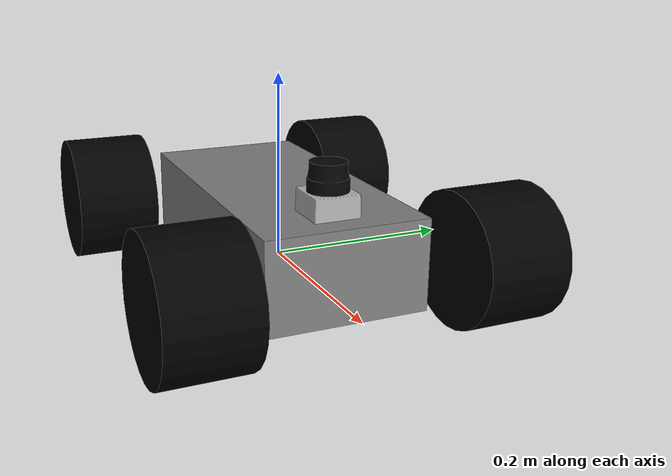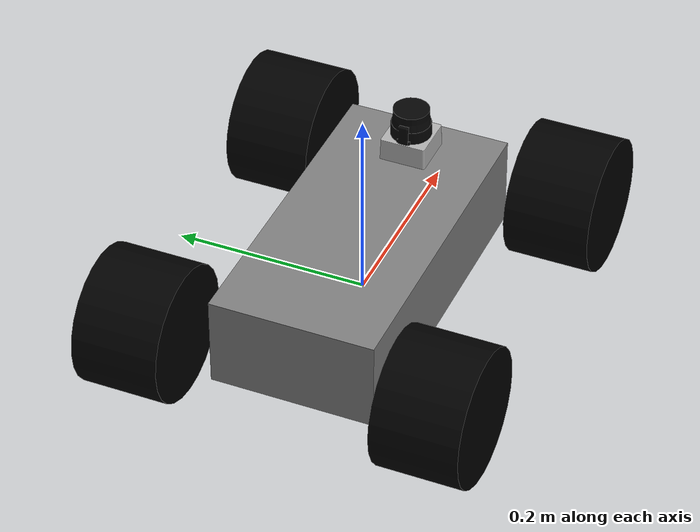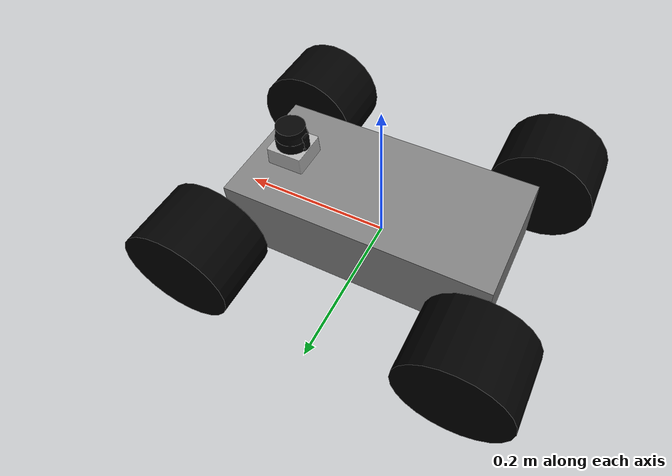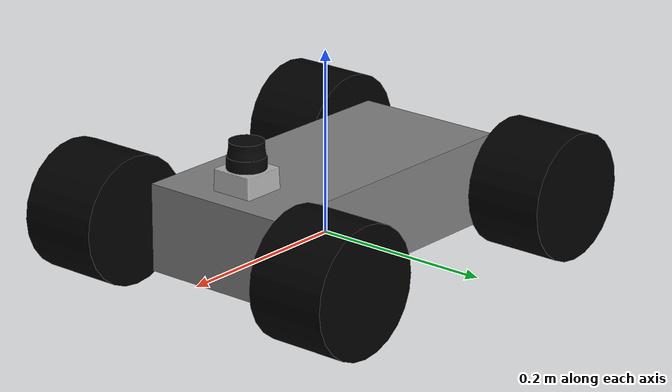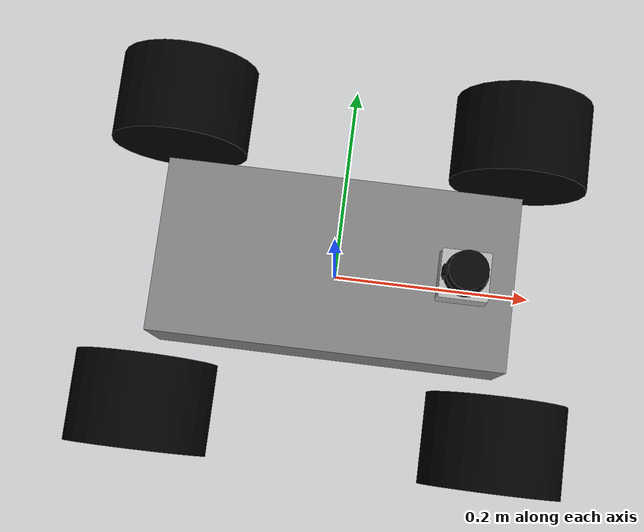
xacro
<?xml version="1.0"?>
<!-- Description of the tas_car. -->

<robot name="tas_car" xmlns:xacro="http://www.ros.org/wiki/xacro"
    xmlns:controller="http://playerstage.sourceforge.net/gazebo/xmlschema/#controller"
    xmlns:interface="http://playerstage.sourceforge.net/gazebo/xmlschema/#interface">
    <!-- Physical constants. -->
    <xacro:property name="degrees_45" value="0.785398163" />
    <xacro:property name="degrees_90" value="1.57079633" />
    <xacro:property name="PI"         value="3.1415926535897931" />

    <!-- Chassis. -->
    <xacro:property name="chassis_length" value="0.346" />
    <xacro:property name="chassis_width"  value="0.17" />
    <xacro:property name="chassis_height" value="0.095" />
    <xacro:property name="chassis_mass"   value="3" />

    <xacro:property name="hub_diameter" value="0.09652"/>
    <xacro:property name="tire_radius" value="0.0695" />
    <xacro:property name="tire_diameter" value="${2*tire_radius}"/>
    <xacro:property name="tire_width" value="0.0889"/>
    <xacro:property name="hex_hub_depth" value="0.01445"/>
    <xacro:property name="wheel_mass" value="0.3"/>
    <xacro:property name="wheel_pos" value="0.179"/>

    <xacro:property name="wheelbase" value="${chassis_length}"/>
    <xacro:property name="hex_hub_dist" value="0.365"/>
    <xacro:property name="axle_length" value="0.03"/>
    <xacro:property name="wheel_travel" value="0.084"/>
    <xacro:property name="shock_z_offset" value="0.0055"/>

    <!-- TODO get shock sprint constant, default used here -->
    <xacro:property name="shock_eff_limit" value="12.5106"/>
    <xacro:property name="shock_vel_limit" value="1000"/>

    <!-- TODO get correct motor specifications -->
    <xacro:property name="axle_eff_limit" value="5.12766"/>
    <xacro:property name="axle_vel_limit" value="244.8696"/>

    <!-- TODO get correct servo specifications -->
    <!-- These constants are used to simulate a Traxxas 2056 servo operated at
       6 V. servo_stall_torque is measured in N m. servo_no_load_speed is
       measured in rad/s. -->
    <xacro:property name="servo_stall_torque" value="0.5649"/>
    <xacro:property name="servo_no_load_speed" value="4.553"/>

    <!-- Laser. -->
    <xacro:property name="laser_size" value="0.05"/>
    <xacro:property name="laser_mass" value="0.1"/>

    <!-- Include files. -->
    <xacro:include filename="$(find tas_car_description)/urdf/include/materials.xacro" />
    <xacro:include filename="$(find tas_car_description)/urdf/include/macros.xacro" />
    <xacro:include filename="$(find tas_car_description)/urdf/include/gazebo_params.gazebo" />

<!-- Build the robot. -->
    <!-- Base link. -->
    <xacro:base_link />

    <!-- Chassis. -->
    <xacro:chassis />

    <!-- Wheels -->
    <xacro:front_wheel  lr_prefix="left"
                        fr_prefix="front"
                        lr_reflect="1"
                        fr_reflect="1"
    />

    <xacro:front_wheel  lr_prefix="right"
                        fr_prefix="front"
                        lr_reflect="-1"
                        fr_reflect="1"
    />

    <xacro:rear_wheel   lr_prefix="left"
                        fr_prefix="rear"
                        lr_reflect="1"
                        fr_reflect="-1"
    />

    <xacro:rear_wheel   lr_prefix="right"
                        fr_prefix="rear"
                        lr_reflect="-1"
                        fr_reflect="-1"
    />

    <!-- Laser scanner. -->
    <xacro:hokuyo_laser />

    <!-- imu -->
    <xacro:imu_link/>

    <gazebo>
        <plugin name="gazebo_ros_control" filename="libgazebo_ros_control.so"/>
    </gazebo>

    <gazebo reference="chassis">
      <material>Gazebo/Orange</material>
    </gazebo>
</robot>

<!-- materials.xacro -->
<robot>
    <material name="black">
       <color rgba="0.0 0.0 0.0 1.0"/>
    </material>

    <material name="blue">
       <color rgba="0.0 0.0 0.8 1.0"/>
    </material>

    <material name="green">
       <color rgba="0.0 0.8 0.0 1.0"/>
    </material>

    <material name="grey">
       <color rgba="0.2 0.2 0.2 1.0"/>
    </material>

    <material name="orange">
       <color rgba="${255/255} ${108/255} ${10/255} 1.0"/>
    </material>

    <material name="brown">
        <color rgba="${222/255} ${207/255} ${195/255} 1.0"/>
    </material>

    <material name="red">
        <color rgba="0.8 0.0 0.0 1.0"/>
    </material>

    <material name="white">
        <color rgba="1.0 1.0 1.0 1.0"/>
    </material>

    <material name="chassis_mat">
        <color rgba="0.5 0.5 0.5 1"/>
    </material>

    <material name="battery_mat">
        <color rgba="0 0 1 1"/>
    </material>

    <material name="tire_mat">
        <color rgba="0 0 0 1"/>
    </material>
</robot>

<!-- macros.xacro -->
<robot>

<!-- Null inertial element. This is needed to make the model work with
       Gazebo. -->
    <macro name="null_inertial">
        <inertial>
            <mass value="0.001"/>
            <inertia ixx="0.001" ixy="0" ixz="0" iyy="0.001" iyz="0" izz="0.001"/>
        </inertial>
    </macro>

<!-- Inertia of a solid cuboid. Width is measured along the x axis, depth
along the y axis, and height along the z axis. -->
    <macro name="solid_cuboid_inertial"
           params="width depth height mass *origin">
        <inertial>
            <insert_block name="origin"/>
            <mass value="${mass}"/>
            <inertia ixx="${mass * (depth * depth + height * height) / 12}"
                   ixy="0" ixz="0"
                   iyy="${mass * (width * width + height * height) / 12}"
                   iyz="0"
                   izz="${mass * (width * width + depth * depth) / 12}"/>
            </inertial>
    </macro>

<!-- Inertia of a thick-walled cylindrical tube with open ends. Height is
measured along the z axis, which is the tube's axis. inner_rad and
outer_rad are the tube's inner and outer radii, respectively. -->
    <macro name="thick_walled_tube_inertial"
           params="inner_rad outer_rad height mass">
        <inertial>
            <mass value="${mass}"/>
            <inertia ixx="${(1 / 12) * mass * (3 * (inner_rad * inner_rad +
                        outer_rad * outer_rad) + height * height)}"
                   ixy="0" ixz="0"
                   iyy="${(1 / 12) * mass * (3 * (inner_rad * inner_rad +
                        outer_rad * outer_rad) + height * height)}"
                   iyz="0"
                   izz="${mass * (inner_rad * inner_rad +
                        outer_rad * outer_rad) / 2}"/>
        </inertial>
    </macro>

    <macro name="base_link">
        <!-- base_link must have geometry so that its axes can be displayed in
        rviz. -->
        <link name="base_link">
            <visual>
                <geometry>
                    <box size="0.01 0.01 0.01"/>
                </geometry>
                <material name="chassis_mat"/>
            </visual>
        </link>

        <gazebo reference="base_link">
            <material>Gazebo/Grey</material>
        </gazebo>
    </macro>

<!-- Chassis. -->
    <macro name="chassis">
        <link name="chassis">
            <visual>
                <origin xyz="0 0 ${tire_radius / 2}"/>
                    <geometry>
                        <box size="${chassis_length} ${chassis_width} ${chassis_height}"/>
                    </geometry>
                    <material name="chassis_mat"/>
            </visual>

            <collision>
                <origin xyz="0 0 ${tire_radius / 2}"/>
                <geometry>
                    <box size="${chassis_length} ${chassis_width} ${chassis_height}"/>
                </geometry>
            </collision>

            <solid_cuboid_inertial
                width="${chassis_length}"
                depth="${chassis_width}"
                height="${chassis_height}"
                mass="${chassis_mass}">
                <origin xyz="0 0 ${tire_radius / 2}"/>
            </solid_cuboid_inertial>
        </link>

        <!-- Fix the chassis to the base_link. -->
        <joint name="base_link_to_chassis" type="fixed">
            <parent link="base_link"/>
            <child link="chassis"/>
        </joint>
    </macro>

<!-- Shock absorber. -->
    <macro  name="shock"
            params="lr_prefix fr_prefix lr_reflect fr_reflect child">
        <joint name="${lr_prefix}_${fr_prefix}_shock" type="prismatic">
            <parent link="chassis"/>
            <child link="${child}"/>

            <origin xyz="${fr_reflect * wheelbase / 2}
            ${lr_reflect * ((hex_hub_dist / 2) - axle_length)}
            ${(wheel_travel / 2) - shock_z_offset}"/>

            <axis xyz="0 0 -1"/>

            <limit lower="${-wheel_travel / 2}" upper="${wheel_travel / 2}"
            effort="${shock_eff_limit}" velocity="${shock_vel_limit}"/>
        </joint>

        <transmission name="${lr_prefix}_${fr_prefix}_shock_trans">
            <type>transmission_interface/SimpleTransmission</type>

            <joint name="${lr_prefix}_${fr_prefix}_shock">
                <hardwareInterface>EffortJointInterface</hardwareInterface>
            </joint>

            <actuator name="${lr_prefix}_${fr_prefix}_shock_act">
                <hardwareInterface>EffortJointInterface</hardwareInterface>
                <mechanicalReduction>1</mechanicalReduction>
            </actuator>
        </transmission>
    </macro>

<!-- The "wheel" macro defines an axle carrier, axle, and wheel. -->
    <macro name="wheel" params="lr_prefix fr_prefix lr_reflect">
        <!-- The axle carrier. -->
        <link name="${lr_prefix}_${fr_prefix}_axle_carrier">
            <null_inertial/>
        </link>

        <!-- The left and right axles have the same axis so that identical
        rotation values cause the wheels to rotate in the same direction. -->
        <joint name="${lr_prefix}_${fr_prefix}_axle" type="continuous">
            <parent link="${lr_prefix}_${fr_prefix}_axle_carrier"/>

            <child link="${lr_prefix}_${fr_prefix}_wheel"/>

            <origin rpy="${degrees_90} 0 0"/>

            <axis xyz="0 0 -1"/>

            <limit effort="${axle_eff_limit}" velocity="${axle_vel_limit}"/>
        </joint>

        <!-- Set the wheel transmission. -->
        <transmission name="${lr_prefix}_${fr_prefix}_axle_trans">
            <type>transmission_interface/SimpleTransmission</type>

            <joint name="${lr_prefix}_${fr_prefix}_axle">
                <hardwareInterface>EffortJointInterface</hardwareInterface>
            </joint>

            <actuator name="${lr_prefix}_${fr_prefix}_axle_act">
                <hardwareInterface>EffortJointInterface</hardwareInterface>
                <mechanicalReduction>1</mechanicalReduction>
            </actuator>
        </transmission>

        <!-- Define the wheel. -->
        <link name="${lr_prefix}_${fr_prefix}_wheel">
            <visual>
                <origin xyz="0 ${lr_reflect * (axle_length - (tire_width / 2 - hex_hub_depth))} 0"/>

                <geometry>
                    <cylinder radius="${tire_radius}" length="${tire_width}"/>
                </geometry>

                <material name="tire_mat"/>
            </visual>

        <collision>
            <origin xyz="0 ${lr_reflect * (axle_length - (tire_width / 2 - hex_hub_depth))} 0"/>

            <geometry>
                <cylinder radius="${tire_radius}" length="${tire_width}"/>
            </geometry>
        </collision>

        <thick_walled_tube_inertial
            inner_rad="${hub_diameter / 2}"
            outer_rad="${tire_radius}"
            height="${tire_width}"
            mass="${wheel_mass}"/>
        </link>

        <gazebo reference="${lr_prefix}_${fr_prefix}_wheel">
            <material>Gazebo/Black</material>
        </gazebo>
    </macro>

<!-- Rear wheel -->
    <macro  name="rear_wheel"
            params="lr_prefix fr_prefix lr_reflect fr_reflect">

        <shock  lr_prefix="${lr_prefix}"
                fr_prefix="${fr_prefix}"
                lr_reflect="${lr_reflect}"
                fr_reflect="${fr_reflect}"
                child="${lr_prefix}_${fr_prefix}_axle_carrier"
        />

        <wheel  lr_prefix="${lr_prefix}"
                fr_prefix="${fr_prefix}"
                lr_reflect="${lr_reflect}"
        />
    </macro>

<!-- Front wheel -->
    <macro  name="front_wheel"
            params="lr_prefix fr_prefix lr_reflect fr_reflect">

        <shock lr_prefix="${lr_prefix}" fr_prefix="${fr_prefix}"
                     lr_reflect="${lr_reflect}" fr_reflect="${fr_reflect}"
                     child="${lr_prefix}_steering_link"/>

        <link name="${lr_prefix}_steering_link">
            <null_inertial/>
        </link>

        <!-- Define the steering joint. -->
        <joint name="${lr_prefix}_steering_joint" type="revolute">
            <parent link="${lr_prefix}_steering_link"/>
            <child link="${lr_prefix}_${fr_prefix}_axle_carrier"/>
            <axis xyz="0 0 1"/>
            <limit lower="${-degrees_45}" upper="${degrees_45}"
            effort="${servo_stall_torque}" velocity="${servo_no_load_speed}"/>
        </joint>

        <!-- Define the transmission for the steering joint. -->
        <transmission name="${lr_prefix}_steering_trans">
            <type>transmission_interface/SimpleTransmission</type>

            <joint name="${lr_prefix}_steering_joint">
                <hardwareInterface>EffortJointInterface</hardwareInterface>
            </joint>

            <actuator name="${lr_prefix}_steering_act">
                <hardwareInterface>EffortJointInterface</hardwareInterface>
                <mechanicalReduction>1</mechanicalReduction>
            </actuator>
        </transmission>

        <wheel  lr_prefix="${lr_prefix}"
                fr_prefix="${fr_prefix}"
                lr_reflect="${lr_reflect}"
        />
    </macro>

<!-- Hokuyo laser scaner. -->
    <macro name="hokuyo_laser">

        <joint name="hokuyo_joint" type="fixed">
            <axis xyz="0 1 0" />
            <origin xyz="${-laser_size+chassis_length/2} 0 ${tire_radius + 0.03}" rpy="0 0 0"/>
            <parent link="chassis"/>
            <child link="hokuyo_link"/>
        </joint>

        <!-- Hokuyo Laser -->
        <link name="hokuyo_link">
            <collision>
                <origin xyz="0 0 0" rpy="0 0 0"/>
                <geometry>
                    <box size="0.1 0.1 0.1"/>
                </geometry>
            </collision>

            <visual>
                <origin xyz="0 0 0" rpy="0 0 0"/>
                <geometry>
                    <mesh filename="file://$(find tas_car_description)/meshes/hokuyo.dae"/>
                </geometry>
            </visual>

            <inertial>
                <mass value="1e-5" />
                <origin xyz="0 0 0" rpy="0 0 0"/>
                <inertia ixx="1e-6" ixy="0" ixz="0" iyy="1e-6" iyz="0" izz="1e-6" />
            </inertial>
        </link>
    </macro>

    <!-- IMU link. -->
    <macro name="imu_link">
        <link name="imu_link">
            <null_inertial/>
        </link>

        <!-- Fix the imu_link to the chassis. -->
        <joint name="imu_link_to_chassis" type="fixed">
            <parent link="chassis"/>
            <child link="imu_link"/>
            <origin xyz="-0.28 0.0 0.15" rpy="0 0 0"/>
        </joint>
    </macro>

</robot>
